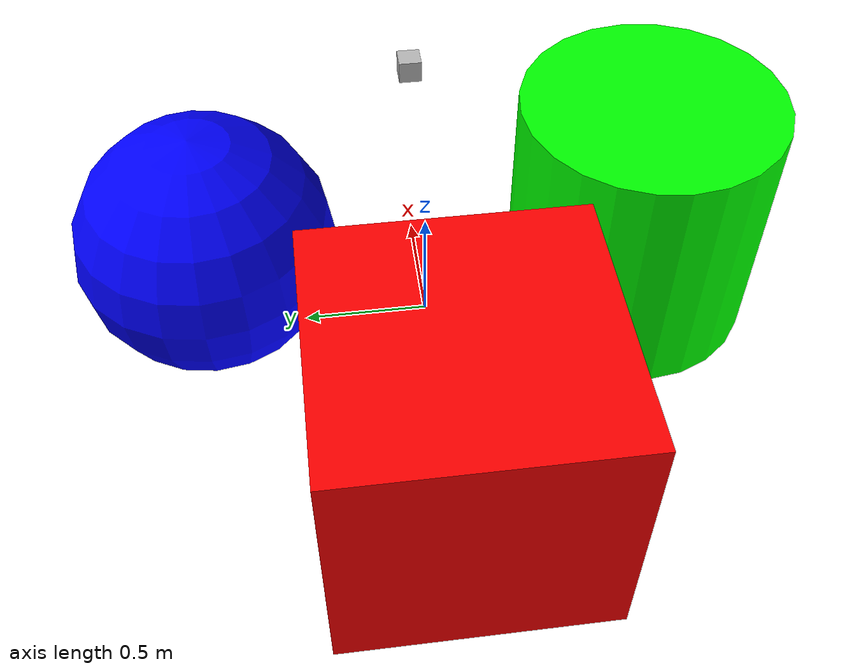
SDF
<?xml version="1.0" ?>
<!--
  Demo world consisting of a thermal camera sensor and 3 models with
  different temperatures specified via the thermal system plugin.
-->

<sdf version="1.6">
  <world name="thermal_camera">
    <physics name="1ms" type="ode">
      <max_step_size>0.001</max_step_size>
      <real_time_factor>0</real_time_factor>
    </physics>
    <plugin
      filename="gz-sim-physics-system"
      name="gz::sim::systems::Physics">
    </plugin>
    <plugin
      filename="gz-sim-sensors-system"
      name="gz::sim::systems::Sensors">
      <render_engine>ogre2</render_engine>
    </plugin>
    <plugin
      filename="gz-sim-scene-broadcaster-system"
      name="gz::sim::systems::SceneBroadcaster">
    </plugin>

    <light type="directional" name="sun">
      <cast_shadows>true</cast_shadows>
      <pose>0 0 10 0 0 0</pose>
      <diffuse>0.8 0.8 0.8 1</diffuse>
      <specular>0.2 0.2 0.2 1</specular>
      <direction>-0.5 0.1 -0.9</direction>
    </light>

    <atmosphere type="adiabatic">
      <temperature>310</temperature>
    </atmosphere>

    <model name="sphere">
      <static>true</static>`
      <pose>0 0.85 0.5 0 0 0</pose>
      <link name="sphere_link">
        <collision name="sphere_collision">
          <geometry>
            <sphere>
              <radius>0.5</radius>
            </sphere>
          </geometry>
        </collision>

        <visual name="sphere_visual">
          <geometry>
            <sphere>
              <radius>0.5</radius>
            </sphere>
          </geometry>
          <material>
            <ambient>0 0 1 1</ambient>
            <diffuse>0 0 1 1</diffuse>
            <specular>0 0 1 1</specular>
          </material>
          <plugin
            filename="gz-sim-thermal-system"
            name="gz::sim::systems::Thermal">
            <temperature>600.0</temperature>
          </plugin>
        </visual>
      </link>
    </model>

    <model name="cylinder">
      <static>true</static>`
      <pose>0 -0.85 0.5 0 0 0</pose>
      <link name="cylinder_link">
        <collision name="cylinder_collision">
          <geometry>
            <cylinder>
              <radius>0.5</radius>
              <length>1.0</length>
            </cylinder>
          </geometry>
        </collision>

        <visual name="cylinder_visual">
          <geometry>
            <cylinder>
              <radius>0.5</radius>
              <length>1.0</length>
            </cylinder>
          </geometry>
          <material>
            <ambient>0 1 0 1</ambient>
            <diffuse>0 1 0 1</diffuse>
            <specular>0 1 0 1</specular>
          </material>
          <plugin
            filename="gz-sim-thermal-system"
            name="gz::sim::systems::Thermal">
            <temperature>800.0</temperature>
          </plugin>
        </visual>
      </link>
    </model>

    <model name="box">
      <static>true</static>`
      <pose>-1 0.0 0.5 0 0 0</pose>
      <link name="box_link">
        <collision name="box_collision">
          <geometry>
            <box>
              <size>1 1 1</size>
            </box>
          </geometry>
        </collision>

        <visual name="box_visual">
          <geometry>
            <box>
              <size>1 1 1</size>
            </box>
          </geometry>
          <material>
            <ambient>1 0 0 1</ambient>
            <diffuse>1 0 0 1</diffuse>
            <specular>1 0 0 1</specular>
          </material>
          <plugin
            filename="gz-sim-thermal-system"
            name="gz::sim::systems::Thermal">
            <temperature>-10.0</temperature>
          </plugin>
        </visual>
      </link>
    </model>

    <model name="thermal_camera_invalid">
      <pose>1.0 0 0.5 0.0 0.0 3.14</pose>
      <link name="link">
        <pose>0.05 0.05 0.05 0 0 0</pose>
        <collision name="collision">
          <geometry>
            <box>
              <size>0.1 0.1 0.1</size>
            </box>
          </geometry>
        </collision>
        <visual name="visual">
          <geometry>
            <box>
              <size>0.1 0.1 0.1</size>
            </box>
          </geometry>
        </visual>
        <sensor name="thermal_camera_invalid" type="thermal">
          <camera>
            <horizontal_fov>1.047</horizontal_fov>
            <image>
              <width>320</width>
              <height>240</height>
              <format>L8</format>
            </image>
            <clip>
              <near>0.1</near>
              <far>100</far>
            </clip>
          </camera>
          <always_on>1</always_on>
          <update_rate>30</update_rate>
          <visualize>true</visualize>
          <topic>thermal_camera_invalid/image</topic>
          <plugin
            filename="gz-sim-thermal-sensor-system"
            name="gz::sim::systems::ThermalSensor">
            <min_temp>999</min_temp>
            <max_temp>-590</max_temp>
            <resolution>0.0</resolution>
          </plugin>
        </sensor>
      </link>
      <static>true</static>
    </model>
  </world>
</sdf>
